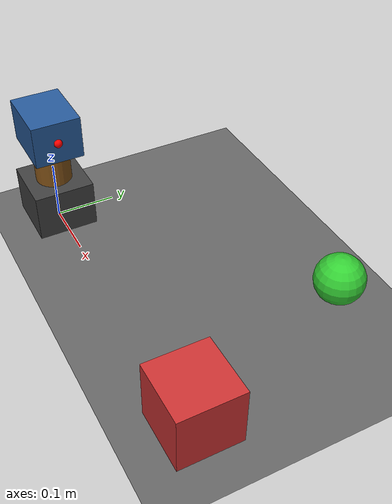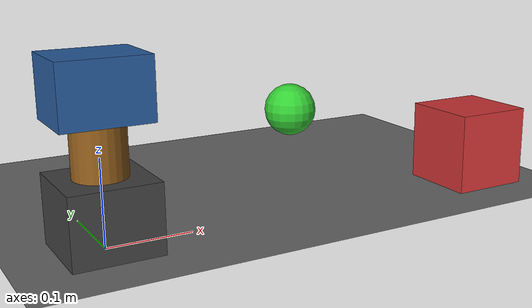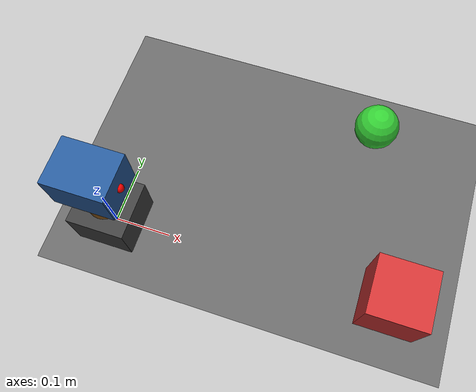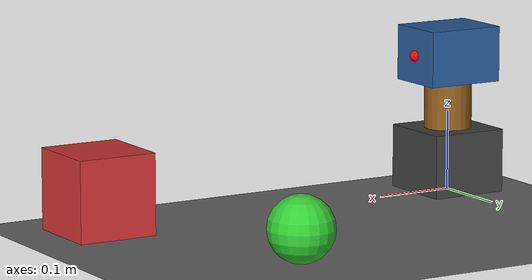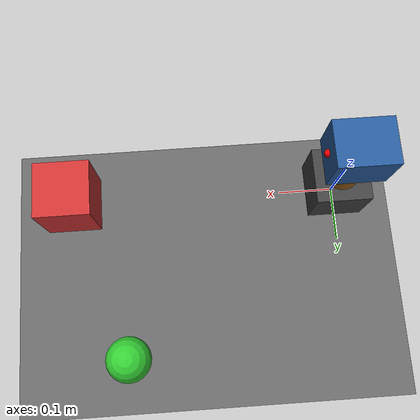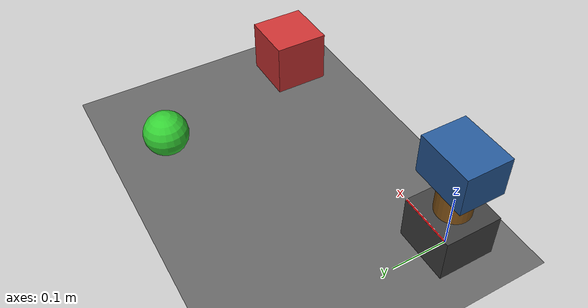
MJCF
<mujoco model="world">
    <compiler angle="radian" autolimits="true"/>
    <option integrator="implicitfast" timestep="0.002"/>

    <visual>
        <headlight ambient="0.3 0.3 0.3" diffuse="0.6 0.6 0.6"/>
    </visual>

    <asset>
        <texture type="2d" name="floor_tex" builtin="checker"
                 rgb1="0.3 0.3 0.3" rgb2="0.5 0.5 0.5" width="512" height="512"/>
        <material name="floor_mat" texture="floor_tex" texrepeat="4 4" reflectance="0.1"/>
    </asset>

    <include file="../robots/pan_tilt_dummy/pan_tilt_dummy.xml"/>

    <worldbody>
        <light pos="0 0 2.5" dir="0 0 -1" diffuse="0.8 0.8 0.8" specular="0.2 0.2 0.2"/>

        <geom name="floor" type="plane" size="3 3 0.1" material="floor_mat"/>

        <camera name="scene_cam" pos="0.5 -0.8 0.6" euler="0 0.6 1.5708" fovy="60"/>

        <body name="ref_box" pos="0.5 0 0.05">
            <geom type="box" size="0.05 0.05 0.05" rgba="0.8 0.2 0.2 1"/>
        </body>
        <body name="ref_sphere" pos="0.4 0.3 0.05">
            <geom type="sphere" size="0.04" rgba="0.2 0.8 0.2 1"/>
        </body>

    </worldbody>

</mujoco>

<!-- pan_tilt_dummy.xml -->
<mujoco model="pan_tilt">
    <compiler angle="radian" autolimits="true"/>
    <option integrator="implicitfast"/>

    <default>
        <joint armature="0.5" damping="2"/>
        <general forcerange="-10 10"/>
    </default>

    <worldbody>

        <!-- Base plate: fixed anchor -->
        <body name="base" pos="0 0 0">
            <geom type="box" size="0.05 0.05 0.04" pos="0 0 0.04" rgba="0.25 0.25 0.25 1" mass="0.5"/>

            <!-- Pan link: rotates around Z (yaw).-->
            <body name="link_1" pos="0 0 0.08">
                <joint name="pan_joint" type="hinge" axis="0 0 1" range="-2.78 2.78"/>
                <geom type="cylinder" size="0.03 0.08" pos="0 0 0" rgba="0.55 0.35 0.1 1" mass="0.3"/>

                <!-- Tilt link: rotates around Y (tilt). -->
                <body name="link_2" pos="0 0 0.06">
                    <joint name="tilt_joint" type="hinge" axis="0 -1 0" range="-1.57 1.57"/>
                    <geom type="box" size="0.05 0.04 0.035" pos="0 0 0.035" rgba="0.15 0.35 0.6 1" mass="0.5"/>

                    <!-- Camera site at front face of tilt box -->
                    <camera name="head_cam" pos="0.05 0 0.035" euler="1.5708 -1.5708 0" fovy="60"/>
                    <site name="camera_site" pos="0.05 0 0.035" size="0.007" rgba="1 0 0 1"/>
                </body>
            </body>
        </body>
    </worldbody>

    <actuator>
        <motor name="pan_joint"  joint="pan_joint"  forcerange="-10 10" ctrlrange="-10 10"/>
        <motor name="tilt_joint" joint="tilt_joint" forcerange="-10 10" ctrlrange="-10 10"/>
    </actuator>

    <contact>
        <exclude body1="base"   body2="link_1"/>
        <exclude body1="link_1" body2="link_2"/>
    </contact>

</mujoco>
